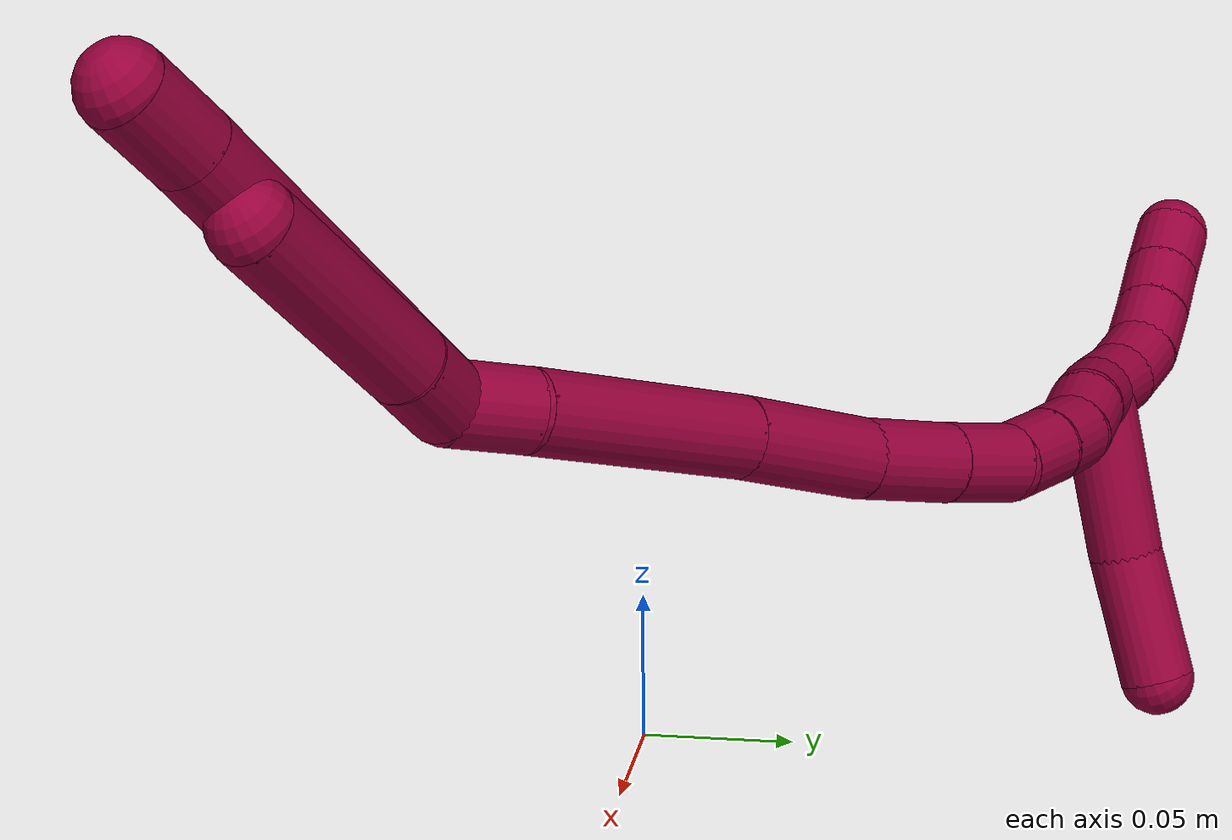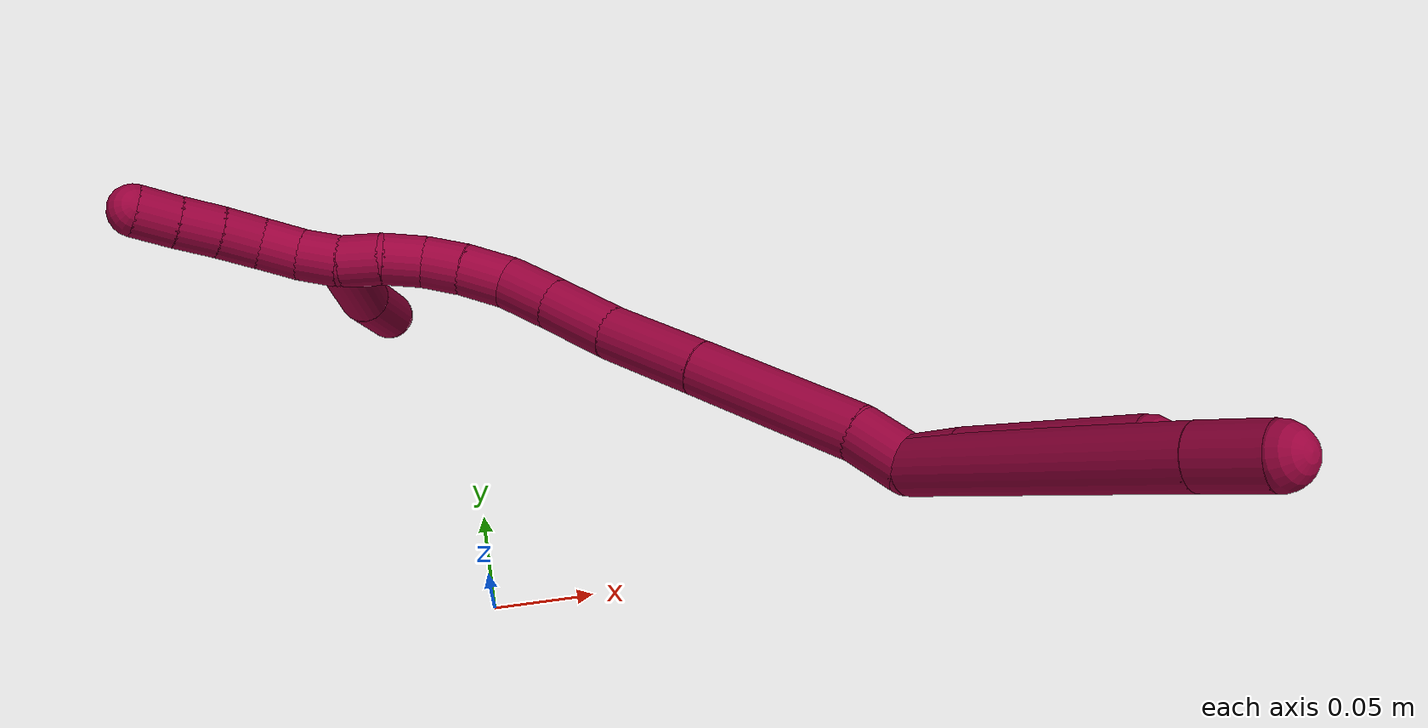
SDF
<sdf version="1.7">
 <world name="default">
  <model name="8">
   <static>0</static>
   <link name="8">
    <collision name="collision-cylinder-e_1_2_8">
     <pose>0.0127 -0.001169 0.05979 0.019546 0.209265 0.002053</pose>
     <geometry><cylinder><radius>0.0125</radius><length>0.12227</length></cylinder></geometry>
     <surface>
      <friction><ode><mu>1.16</mu><mu2>1.16</mu2><slip1>0</slip1><slip2>0</slip2></ode></friction>
      <contact><ode><kp>1e+06</kp><kd>1</kd><max_vel>0</max_vel><min_depth>0.001</min_depth></ode></contact>
     </surface>
    </collision>
    <visual name="visual-cylinder-e_1_2_8">
     <pose>0.0127 -0.001169 0.05979 0.019546 0.209265 0.002053</pose>
     <geometry><cylinder><radius>0.0125</radius><length>0.12227</length></cylinder></geometry>
     <material><ambient>0.584314 0 0.227451 1</ambient></material>
    </visual>
    <collision name="collision-cylinder-e_2_8_6">
     <pose>0.028658 -0.002774 0.13305 0.032357 0.237166 0.003855</pose>
     <geometry><cylinder><radius>0.0125</radius><length>0.02773</length></cylinder></geometry>
     <surface>
      <friction><ode><mu>1.16</mu><mu2>1.16</mu2><slip1>0</slip1><slip2>0</slip2></ode></friction>
      <contact><ode><kp>1e+06</kp><kd>1</kd><max_vel>0</max_vel><min_depth>0.001</min_depth></ode></contact>
     </surface>
    </collision>
    <visual name="visual-cylinder-e_2_8_6">
     <pose>0.028658 -0.002774 0.13305 0.032357 0.237166 0.003855</pose>
     <geometry><cylinder><radius>0.0125</radius><length>0.02773</length></cylinder></geometry>
     <material><ambient>0.584314 0 0.227451 1</ambient></material>
    </visual>
    <collision name="collision-cylinder-e_1_2_9">
     <pose>0.003952 0.001131 0.011675 -0.096568 0.324988 -0.015843</pose>
     <geometry><cylinder><radius>0.0125</radius><length>0.024756</length></cylinder></geometry>
     <surface>
      <friction><ode><mu>1.16</mu><mu2>1.16</mu2><slip1>0</slip1><slip2>0</slip2></ode></friction>
      <contact><ode><kp>1e+06</kp><kd>1</kd><max_vel>0</max_vel><min_depth>0.001</min_depth></ode></contact>
     </surface>
    </collision>
    <visual name="visual-cylinder-e_1_2_9">
     <pose>0.003952 0.001131 0.011675 -0.096568 0.324988 -0.015843</pose>
     <geometry><cylinder><radius>0.0125</radius><length>0.024756</length></cylinder></geometry>
     <material><ambient>0.584314 0 0.227451 1</ambient></material>
    </visual>
    <collision name="collision-cylinder-e_2_9_5">
     <pose>0.018292 0.002854 0.059506 -0.016375 0.279741 -0.002306</pose>
     <geometry><cylinder><radius>0.0125</radius><length>0.075244</length></cylinder></geometry>
     <surface>
      <friction><ode><mu>1.16</mu><mu2>1.16</mu2><slip1>0</slip1><slip2>0</slip2></ode></friction>
      <contact><ode><kp>1e+06</kp><kd>1</kd><max_vel>0</max_vel><min_depth>0.001</min_depth></ode></contact>
     </surface>
    </collision>
    <visual name="visual-cylinder-e_2_9_5">
     <pose>0.018292 0.002854 0.059506 -0.016375 0.279741 -0.002306</pose>
     <geometry><cylinder><radius>0.0125</radius><length>0.075244</length></cylinder></geometry>
     <material><ambient>0.584314 0 0.227451 1</ambient></material>
    </visual>
    <collision name="collision-cylinder-e_1_2_10">
     <pose>-0.00621 0.006342 -0.009309 -2.54354 -0.503858 1.39141</pose>
     <geometry><cylinder><radius>0.0125</radius><length>0.025725</length></cylinder></geometry>
     <surface>
      <friction><ode><mu>1.16</mu><mu2>1.16</mu2><slip1>0</slip1><slip2>0</slip2></ode></friction>
      <contact><ode><kp>1e+06</kp><kd>1</kd><max_vel>0</max_vel><min_depth>0.001</min_depth></ode></contact>
     </surface>
    </collision>
    <visual name="visual-cylinder-e_1_2_10">
     <pose>-0.00621 0.006342 -0.009309 -2.54354 -0.503858 1.39141</pose>
     <geometry><cylinder><radius>0.0125</radius><length>0.025725</length></cylinder></geometry>
     <material><ambient>0.584314 0 0.227451 1</ambient></material>
    </visual>
    <collision name="collision-cylinder-e_2_10_11">
     <pose>-0.033889 0.026132 -0.049289 -2.72837 -0.570062 1.8997</pose>
     <geometry><cylinder><radius>0.0125</radius><length>0.079561</length></cylinder></geometry>
     <surface>
      <friction><ode><mu>1.16</mu><mu2>1.16</mu2><slip1>0</slip1><slip2>0</slip2></ode></friction>
      <contact><ode><kp>1e+06</kp><kd>1</kd><max_vel>0</max_vel><min_depth>0.001</min_depth></ode></contact>
     </surface>
    </collision>
    <visual name="visual-cylinder-e_2_10_11">
     <pose>-0.033889 0.026132 -0.049289 -2.72837 -0.570062 1.8997</pose>
     <geometry><cylinder><radius>0.0125</radius><length>0.079561</length></cylinder></geometry>
     <material><ambient>0.584314 0 0.227451 1</ambient></material>
    </visual>
    <collision name="collision-cylinder-e_3_11_12">
     <pose>-0.067869 0.047899 -0.099554 -2.7401 -0.531351 1.85738</pose>
     <geometry><cylinder><radius>0.0125</radius><length>0.049381</length></cylinder></geometry>
     <surface>
      <friction><ode><mu>1.16</mu><mu2>1.16</mu2><slip1>0</slip1><slip2>0</slip2></ode></friction>
      <contact><ode><kp>1e+06</kp><kd>1</kd><max_vel>0</max_vel><min_depth>0.001</min_depth></ode></contact>
     </surface>
    </collision>
    <visual name="visual-cylinder-e_3_11_12">
     <pose>-0.067869 0.047899 -0.099554 -2.7401 -0.531351 1.85738</pose>
     <geometry><cylinder><radius>0.0125</radius><length>0.049381</length></cylinder></geometry>
     <material><ambient>0.584314 0 0.227451 1</ambient></material>
    </visual>
    <collision name="collision-cylinder-e_4_12_13">
     <pose>-0.09004 0.063041 -0.13178 -2.64638 -0.592305 1.75785</pose>
     <geometry><cylinder><radius>0.0125</radius><length>0.034609</length></cylinder></geometry>
     <surface>
      <friction><ode><mu>1.16</mu><mu2>1.16</mu2><slip1>0</slip1><slip2>0</slip2></ode></friction>
      <contact><ode><kp>1e+06</kp><kd>1</kd><max_vel>0</max_vel><min_depth>0.001</min_depth></ode></contact>
     </surface>
    </collision>
    <visual name="visual-cylinder-e_4_12_13">
     <pose>-0.09004 0.063041 -0.13178 -2.64638 -0.592305 1.75785</pose>
     <geometry><cylinder><radius>0.0125</radius><length>0.034609</length></cylinder></geometry>
     <material><ambient>0.584314 0 0.227451 1</ambient></material>
    </visual>
    <collision name="collision-cylinder-e_5_13_14">
     <pose>-0.107873 0.07503 -0.154216 -2.65655 -0.635397 1.85162</pose>
     <geometry><cylinder><radius>0.0125</radius><length>0.027541</length></cylinder></geometry>
     <surface>
      <friction><ode><mu>1.16</mu><mu2>1.16</mu2><slip1>0</slip1><slip2>0</slip2></ode></friction>
      <contact><ode><kp>1e+06</kp><kd>1</kd><max_vel>0</max_vel><min_depth>0.001</min_depth></ode></contact>
     </surface>
    </collision>
    <visual name="visual-cylinder-e_5_13_14">
     <pose>-0.107873 0.07503 -0.154216 -2.65655 -0.635397 1.85162</pose>
     <geometry><cylinder><radius>0.0125</radius><length>0.027541</length></cylinder></geometry>
     <material><ambient>0.584314 0 0.227451 1</ambient></material>
    </visual>
    <collision name="collision-cylinder-e_6_14_15">
     <pose>-0.125287 0.08245 -0.170469 -2.80562 -0.934276 2.49289</pose>
     <geometry><cylinder><radius>0.0125</radius><length>0.022983</length></cylinder></geometry>
     <surface>
      <friction><ode><mu>1.16</mu><mu2>1.16</mu2><slip1>0</slip1><slip2>0</slip2></ode></friction>
      <contact><ode><kp>1e+06</kp><kd>1</kd><max_vel>0</max_vel><min_depth>0.001</min_depth></ode></contact>
     </surface>
    </collision>
    <visual name="visual-cylinder-e_6_14_15">
     <pose>-0.125287 0.08245 -0.170469 -2.80562 -0.934276 2.49289</pose>
     <geometry><cylinder><radius>0.0125</radius><length>0.022983</length></cylinder></geometry>
     <material><ambient>0.584314 0 0.227451 1</ambient></material>
    </visual>
    <collision name="collision-cylinder-e_7_15_16">
     <pose>-0.142801 0.085657 -0.18255 -2.9735 -0.966441 2.82319</pose>
     <geometry><cylinder><radius>0.0125</radius><length>0.020107</length></cylinder></geometry>
     <surface>
      <friction><ode><mu>1.16</mu><mu2>1.16</mu2><slip1>0</slip1><slip2>0</slip2></ode></friction>
      <contact><ode><kp>1e+06</kp><kd>1</kd><max_vel>0</max_vel><min_depth>0.001</min_depth></ode></contact>
     </surface>
    </collision>
    <visual name="visual-cylinder-e_7_15_16">
     <pose>-0.142801 0.085657 -0.18255 -2.9735 -0.966441 2.82319</pose>
     <geometry><cylinder><radius>0.0125</radius><length>0.020107</length></cylinder></geometry>
     <material><ambient>0.584314 0 0.227451 1</ambient></material>
    </visual>
    <collision name="collision-cylinder-e_8_16_17">
     <pose>-0.160411 0.085717 -0.191727 2.89384 -1.19759 -2.78062</pose>
     <geometry><cylinder><radius>0.0125</radius><length>0.020056</length></cylinder></geometry>
     <surface>
      <friction><ode><mu>1.16</mu><mu2>1.16</mu2><slip1>0</slip1><slip2>0</slip2></ode></friction>
      <contact><ode><kp>1e+06</kp><kd>1</kd><max_vel>0</max_vel><min_depth>0.001</min_depth></ode></contact>
     </surface>
    </collision>
    <visual name="visual-cylinder-e_8_16_17">
     <pose>-0.160411 0.085717 -0.191727 2.89384 -1.19759 -2.78062</pose>
     <geometry><cylinder><radius>0.0125</radius><length>0.020056</length></cylinder></geometry>
     <material><ambient>0.584314 0 0.227451 1</ambient></material>
    </visual>
    <collision name="collision-cylinder-e_9_17_1">
     <pose>-0.17798 0.08312 -0.200725 2.83941 -0.96411 -2.57526</pose>
     <geometry><cylinder><radius>0.0125</radius><length>0.020037</length></cylinder></geometry>
     <surface>
      <friction><ode><mu>1.16</mu><mu2>1.16</mu2><slip1>0</slip1><slip2>0</slip2></ode></friction>
      <contact><ode><kp>1e+06</kp><kd>1</kd><max_vel>0</max_vel><min_depth>0.001</min_depth></ode></contact>
     </surface>
    </collision>
    <visual name="visual-cylinder-e_9_17_1">
     <pose>-0.17798 0.08312 -0.200725 2.83941 -0.96411 -2.57526</pose>
     <geometry><cylinder><radius>0.0125</radius><length>0.020037</length></cylinder></geometry>
     <material><ambient>0.584314 0 0.227451 1</ambient></material>
    </visual>
    <collision name="collision-cylinder-e_1_1_18">
     <pose>-0.194755 0.082035 -0.211336 -3.02292 -1.02455 2.93109</pose>
     <geometry><cylinder><radius>0.0125</radius><length>0.02</length></cylinder></geometry>
     <surface>
      <friction><ode><mu>1.16</mu><mu2>1.16</mu2><slip1>0</slip1><slip2>0</slip2></ode></friction>
      <contact><ode><kp>1e+06</kp><kd>1</kd><max_vel>0</max_vel><min_depth>0.001</min_depth></ode></contact>
     </surface>
    </collision>
    <visual name="visual-cylinder-e_1_1_18">
     <pose>-0.194755 0.082035 -0.211336 -3.02292 -1.02455 2.93109</pose>
     <geometry><cylinder><radius>0.0125</radius><length>0.02</length></cylinder></geometry>
     <material><ambient>0.584314 0 0.227451 1</ambient></material>
    </visual>
    <collision name="collision-cylinder-e_2_18_19">
     <pose>-0.212675 0.083749 -0.219796 -2.82043 -1.21548 2.68401</pose>
     <geometry><cylinder><radius>0.0125</radius><length>0.02</length></cylinder></geometry>
     <surface>
      <friction><ode><mu>1.16</mu><mu2>1.16</mu2><slip1>0</slip1><slip2>0</slip2></ode></friction>
      <contact><ode><kp>1e+06</kp><kd>1</kd><max_vel>0</max_vel><min_depth>0.001</min_depth></ode></contact>
     </surface>
    </collision>
    <visual name="visual-cylinder-e_2_18_19">
     <pose>-0.212675 0.083749 -0.219796 -2.82043 -1.21548 2.68401</pose>
     <geometry><cylinder><radius>0.0125</radius><length>0.02</length></cylinder></geometry>
     <material><ambient>0.584314 0 0.227451 1</ambient></material>
    </visual>
    <collision name="collision-cylinder-e_3_19_20">
     <pose>-0.232039 0.085073 -0.223536 -2.66625 -1.52131 2.64309</pose>
     <geometry><cylinder><radius>0.0125</radius><length>0.02</length></cylinder></geometry>
     <surface>
      <friction><ode><mu>1.16</mu><mu2>1.16</mu2><slip1>0</slip1><slip2>0</slip2></ode></friction>
      <contact><ode><kp>1e+06</kp><kd>1</kd><max_vel>0</max_vel><min_depth>0.001</min_depth></ode></contact>
     </surface>
    </collision>
    <visual name="visual-cylinder-e_3_19_20">
     <pose>-0.232039 0.085073 -0.223536 -2.66625 -1.52131 2.64309</pose>
     <geometry><cylinder><radius>0.0125</radius><length>0.02</length></cylinder></geometry>
     <material><ambient>0.584314 0 0.227451 1</ambient></material>
    </visual>
    <collision name="collision-cylinder-e_4_20_21">
     <pose>-0.252018 0.085127 -0.224349 2.70706 -1.52971 -2.68943</pose>
     <geometry><cylinder><radius>0.0125</radius><length>0.02</length></cylinder></geometry>
     <surface>
      <friction><ode><mu>1.16</mu><mu2>1.16</mu2><slip1>0</slip1><slip2>0</slip2></ode></friction>
      <contact><ode><kp>1e+06</kp><kd>1</kd><max_vel>0</max_vel><min_depth>0.001</min_depth></ode></contact>
     </surface>
    </collision>
    <visual name="visual-cylinder-e_4_20_21">
     <pose>-0.252018 0.085127 -0.224349 2.70706 -1.52971 -2.68943</pose>
     <geometry><cylinder><radius>0.0125</radius><length>0.02</length></cylinder></geometry>
     <material><ambient>0.584314 0 0.227451 1</ambient></material>
    </visual>
    <collision name="collision-cylinder-e_5_21_4">
     <pose>-0.272004 0.085108 -0.225022 -2.66774 -1.53705 2.65211</pose>
     <geometry><cylinder><radius>0.0125</radius><length>0.02</length></cylinder></geometry>
     <surface>
      <friction><ode><mu>1.16</mu><mu2>1.16</mu2><slip1>0</slip1><slip2>0</slip2></ode></friction>
      <contact><ode><kp>1e+06</kp><kd>1</kd><max_vel>0</max_vel><min_depth>0.001</min_depth></ode></contact>
     </surface>
    </collision>
    <visual name="visual-cylinder-e_5_21_4">
     <pose>-0.272004 0.085108 -0.225022 -2.66774 -1.53705 2.65211</pose>
     <geometry><cylinder><radius>0.0125</radius><length>0.02</length></cylinder></geometry>
     <material><ambient>0.584314 0 0.227451 1</ambient></material>
    </visual>
    <collision name="collision-cylinder-e_1_1_22">
     <pose>-0.172113 0.080477 -0.230349 3.10257 0.527687 2.99738</pose>
     <geometry><cylinder><radius>0.0125</radius><length>0.055995</length></cylinder></geometry>
     <surface>
      <friction><ode><mu>1.16</mu><mu2>1.16</mu2><slip1>0</slip1><slip2>0</slip2></ode></friction>
      <contact><ode><kp>1e+06</kp><kd>1</kd><max_vel>0</max_vel><min_depth>0.001</min_depth></ode></contact>
     </surface>
    </collision>
    <visual name="visual-cylinder-e_1_1_22">
     <pose>-0.172113 0.080477 -0.230349 3.10257 0.527687 2.99738</pose>
     <geometry><cylinder><radius>0.0125</radius><length>0.055995</length></cylinder></geometry>
     <material><ambient>0.584314 0 0.227451 1</ambient></material>
    </visual>
    <collision name="collision-cylinder-e_2_22_3">
     <pose>-0.144996 0.081258 -0.272173 -3.04417 0.633149 -2.84613</pose>
     <geometry><cylinder><radius>0.0125</radius><length>0.044005</length></cylinder></geometry>
     <surface>
      <friction><ode><mu>1.16</mu><mu2>1.16</mu2><slip1>0</slip1><slip2>0</slip2></ode></friction>
      <contact><ode><kp>1e+06</kp><kd>1</kd><max_vel>0</max_vel><min_depth>0.001</min_depth></ode></contact>
     </surface>
    </collision>
    <visual name="visual-cylinder-e_2_22_3">
     <pose>-0.144996 0.081258 -0.272173 -3.04417 0.633149 -2.84613</pose>
     <geometry><cylinder><radius>0.0125</radius><length>0.044005</length></cylinder></geometry>
     <material><ambient>0.584314 0 0.227451 1</ambient></material>
    </visual>
    <collision name="collision-sphere-3">
     <pose>-0.131978 0.082984 -0.289827 0 -0 0</pose>
     <geometry><sphere><radius>0.0125</radius></sphere></geometry>
     <surface>
      <friction><ode><mu>1.16</mu><mu2>1.16</mu2><slip1>0</slip1><slip2>0</slip2></ode></friction>
      <contact><ode><kp>1e+06</kp><kd>1</kd><max_vel>0</max_vel><min_depth>0.001</min_depth></ode></contact>
     </surface>
    </collision>
    <visual name="visual-sphere-3">
     <pose>-0.131978 0.082984 -0.289827 0 -0 0</pose>
     <geometry><sphere><radius>0.0125</radius></sphere></geometry>
     <material><ambient>0.584314 0 0.227451 1</ambient></material>
    </visual>
    <collision name="collision-sphere-22">
     <pose>-0.158015 0.079533 -0.254519 0 -0 0</pose>
     <geometry><sphere><radius>0.0125</radius></sphere></geometry>
     <surface>
      <friction><ode><mu>1.16</mu><mu2>1.16</mu2><slip1>0</slip1><slip2>0</slip2></ode></friction>
      <contact><ode><kp>1e+06</kp><kd>1</kd><max_vel>0</max_vel><min_depth>0.001</min_depth></ode></contact>
     </surface>
    </collision>
    <visual name="visual-sphere-22">
     <pose>-0.158015 0.079533 -0.254519 0 -0 0</pose>
     <geometry><sphere><radius>0.0125</radius></sphere></geometry>
     <material><ambient>0.584314 0 0.227451 1</ambient></material>
    </visual>
    <collision name="collision-sphere-4">
     <pose>-0.281998 0.085261 -0.225322 0 -0 0</pose>
     <geometry><sphere><radius>0.0125</radius></sphere></geometry>
     <surface>
      <friction><ode><mu>1.16</mu><mu2>1.16</mu2><slip1>0</slip1><slip2>0</slip2></ode></friction>
      <contact><ode><kp>1e+06</kp><kd>1</kd><max_vel>0</max_vel><min_depth>0.001</min_depth></ode></contact>
     </surface>
    </collision>
    <visual name="visual-sphere-4">
     <pose>-0.281998 0.085261 -0.225322 0 -0 0</pose>
     <geometry><sphere><radius>0.0125</radius></sphere></geometry>
     <material><ambient>0.584314 0 0.227451 1</ambient></material>
    </visual>
    <collision name="collision-sphere-21">
     <pose>-0.262009 0.084954 -0.224721 0 -0 0</pose>
     <geometry><sphere><radius>0.0125</radius></sphere></geometry>
     <surface>
      <friction><ode><mu>1.16</mu><mu2>1.16</mu2><slip1>0</slip1><slip2>0</slip2></ode></friction>
      <contact><ode><kp>1e+06</kp><kd>1</kd><max_vel>0</max_vel><min_depth>0.001</min_depth></ode></contact>
     </surface>
    </collision>
    <visual name="visual-sphere-21">
     <pose>-0.262009 0.084954 -0.224721 0 -0 0</pose>
     <geometry><sphere><radius>0.0125</radius></sphere></geometry>
     <material><ambient>0.584314 0 0.227451 1</ambient></material>
    </visual>
    <collision name="collision-sphere-20">
     <pose>-0.242026 0.085299 -0.223976 0 -0 0</pose>
     <geometry><sphere><radius>0.0125</radius></sphere></geometry>
     <surface>
      <friction><ode><mu>1.16</mu><mu2>1.16</mu2><slip1>0</slip1><slip2>0</slip2></ode></friction>
      <contact><ode><kp>1e+06</kp><kd>1</kd><max_vel>0</max_vel><min_depth>0.001</min_depth></ode></contact>
     </surface>
    </collision>
    <visual name="visual-sphere-20">
     <pose>-0.242026 0.085299 -0.223976 0 -0 0</pose>
     <geometry><sphere><radius>0.0125</radius></sphere></geometry>
     <material><ambient>0.584314 0 0.227451 1</ambient></material>
    </visual>
    <collision name="collision-sphere-10">
     <pose>-0.01242 0.012684 -0.018618 0 -0 0</pose>
     <geometry><sphere><radius>0.0125</radius></sphere></geometry>
     <surface>
      <friction><ode><mu>1.16</mu><mu2>1.16</mu2><slip1>0</slip1><slip2>0</slip2></ode></friction>
      <contact><ode><kp>1e+06</kp><kd>1</kd><max_vel>0</max_vel><min_depth>0.001</min_depth></ode></contact>
     </surface>
    </collision>
    <visual name="visual-sphere-10">
     <pose>-0.01242 0.012684 -0.018618 0 -0 0</pose>
     <geometry><sphere><radius>0.0125</radius></sphere></geometry>
     <material><ambient>0.584314 0 0.227451 1</ambient></material>
    </visual>
    <collision name="collision-sphere-5">
     <pose>0.02868 0.003446 0.09566 0 -0 0</pose>
     <geometry><sphere><radius>0.0125</radius></sphere></geometry>
     <surface>
      <friction><ode><mu>1.16</mu><mu2>1.16</mu2><slip1>0</slip1><slip2>0</slip2></ode></friction>
      <contact><ode><kp>1e+06</kp><kd>1</kd><max_vel>0</max_vel><min_depth>0.001</min_depth></ode></contact>
     </surface>
    </collision>
    <visual name="visual-sphere-5">
     <pose>0.02868 0.003446 0.09566 0 -0 0</pose>
     <geometry><sphere><radius>0.0125</radius></sphere></geometry>
     <material><ambient>0.584314 0 0.227451 1</ambient></material>
    </visual>
    <collision name="collision-sphere-6">
     <pose>0.031916 -0.00321 0.146519 0 -0 0</pose>
     <geometry><sphere><radius>0.0125</radius></sphere></geometry>
     <surface>
      <friction><ode><mu>1.16</mu><mu2>1.16</mu2><slip1>0</slip1><slip2>0</slip2></ode></friction>
      <contact><ode><kp>1e+06</kp><kd>1</kd><max_vel>0</max_vel><min_depth>0.001</min_depth></ode></contact>
     </surface>
    </collision>
    <visual name="visual-sphere-6">
     <pose>0.031916 -0.00321 0.146519 0 -0 0</pose>
     <geometry><sphere><radius>0.0125</radius></sphere></geometry>
     <material><ambient>0.584314 0 0.227451 1</ambient></material>
    </visual>
    <collision name="collision-sphere-9">
     <pose>0.007905 0.002262 0.023351 0 -0 0</pose>
     <geometry><sphere><radius>0.0125</radius></sphere></geometry>
     <surface>
      <friction><ode><mu>1.16</mu><mu2>1.16</mu2><slip1>0</slip1><slip2>0</slip2></ode></friction>
      <contact><ode><kp>1e+06</kp><kd>1</kd><max_vel>0</max_vel><min_depth>0.001</min_depth></ode></contact>
     </surface>
    </collision>
    <visual name="visual-sphere-9">
     <pose>0.007905 0.002262 0.023351 0 -0 0</pose>
     <geometry><sphere><radius>0.0125</radius></sphere></geometry>
     <material><ambient>0.584314 0 0.227451 1</ambient></material>
    </visual>
    <collision name="collision-sphere-2">
     <geometry><sphere><radius>0.0125</radius></sphere></geometry>
     <surface>
      <friction><ode><mu>1.16</mu><mu2>1.16</mu2><slip1>0</slip1><slip2>0</slip2></ode></friction>
      <contact><ode><kp>1e+06</kp><kd>1</kd><max_vel>0</max_vel><min_depth>0.001</min_depth></ode></contact>
     </surface>
    </collision>
    <visual name="visual-sphere-2">
     <geometry><sphere><radius>0.0125</radius></sphere></geometry>
     <material><ambient>0.584314 0 0.227451 1</ambient></material>
    </visual>
    <collision name="collision-sphere-19">
     <pose>-0.222051 0.084847 -0.223097 0 -0 0</pose>
     <geometry><sphere><radius>0.0125</radius></sphere></geometry>
     <surface>
      <friction><ode><mu>1.16</mu><mu2>1.16</mu2><slip1>0</slip1><slip2>0</slip2></ode></friction>
      <contact><ode><kp>1e+06</kp><kd>1</kd><max_vel>0</max_vel><min_depth>0.001</min_depth></ode></contact>
     </surface>
    </collision>
    <visual name="visual-sphere-19">
     <pose>-0.222051 0.084847 -0.223097 0 -0 0</pose>
     <geometry><sphere><radius>0.0125</radius></sphere></geometry>
     <material><ambient>0.584314 0 0.227451 1</ambient></material>
    </visual>
    <collision name="collision-sphere-8">
     <pose>0.025401 -0.002338 0.11958 0 -0 0</pose>
     <geometry><sphere><radius>0.0125</radius></sphere></geometry>
     <surface>
      <friction><ode><mu>1.16</mu><mu2>1.16</mu2><slip1>0</slip1><slip2>0</slip2></ode></friction>
      <contact><ode><kp>1e+06</kp><kd>1</kd><max_vel>0</max_vel><min_depth>0.001</min_depth></ode></contact>
     </surface>
    </collision>
    <visual name="visual-sphere-8">
     <pose>0.025401 -0.002338 0.11958 0 -0 0</pose>
     <geometry><sphere><radius>0.0125</radius></sphere></geometry>
     <material><ambient>0.584314 0 0.227451 1</ambient></material>
    </visual>
    <collision name="collision-sphere-11">
     <pose>-0.055358 0.039581 -0.07996 0 -0 0</pose>
     <geometry><sphere><radius>0.0125</radius></sphere></geometry>
     <surface>
      <friction><ode><mu>1.16</mu><mu2>1.16</mu2><slip1>0</slip1><slip2>0</slip2></ode></friction>
      <contact><ode><kp>1e+06</kp><kd>1</kd><max_vel>0</max_vel><min_depth>0.001</min_depth></ode></contact>
     </surface>
    </collision>
    <visual name="visual-sphere-11">
     <pose>-0.055358 0.039581 -0.07996 0 -0 0</pose>
     <geometry><sphere><radius>0.0125</radius></sphere></geometry>
     <material><ambient>0.584314 0 0.227451 1</ambient></material>
    </visual>
    <collision name="collision-sphere-12">
     <pose>-0.08038 0.056218 -0.119148 0 -0 0</pose>
     <geometry><sphere><radius>0.0125</radius></sphere></geometry>
     <surface>
      <friction><ode><mu>1.16</mu><mu2>1.16</mu2><slip1>0</slip1><slip2>0</slip2></ode></friction>
      <contact><ode><kp>1e+06</kp><kd>1</kd><max_vel>0</max_vel><min_depth>0.001</min_depth></ode></contact>
     </surface>
    </collision>
    <visual name="visual-sphere-12">
     <pose>-0.08038 0.056218 -0.119148 0 -0 0</pose>
     <geometry><sphere><radius>0.0125</radius></sphere></geometry>
     <material><ambient>0.584314 0 0.227451 1</ambient></material>
    </visual>
    <collision name="collision-sphere-13">
     <pose>-0.099701 0.069863 -0.144412 0 -0 0</pose>
     <geometry><sphere><radius>0.0125</radius></sphere></geometry>
     <surface>
      <friction><ode><mu>1.16</mu><mu2>1.16</mu2><slip1>0</slip1><slip2>0</slip2></ode></friction>
      <contact><ode><kp>1e+06</kp><kd>1</kd><max_vel>0</max_vel><min_depth>0.001</min_depth></ode></contact>
     </surface>
    </collision>
    <visual name="visual-sphere-13">
     <pose>-0.099701 0.069863 -0.144412 0 -0 0</pose>
     <geometry><sphere><radius>0.0125</radius></sphere></geometry>
     <material><ambient>0.584314 0 0.227451 1</ambient></material>
    </visual>
    <collision name="collision-sphere-14">
     <pose>-0.116046 0.080198 -0.164021 0 -0 0</pose>
     <geometry><sphere><radius>0.0125</radius></sphere></geometry>
     <surface>
      <friction><ode><mu>1.16</mu><mu2>1.16</mu2><slip1>0</slip1><slip2>0</slip2></ode></friction>
      <contact><ode><kp>1e+06</kp><kd>1</kd><max_vel>0</max_vel><min_depth>0.001</min_depth></ode></contact>
     </surface>
    </collision>
    <visual name="visual-sphere-14">
     <pose>-0.116046 0.080198 -0.164021 0 -0 0</pose>
     <geometry><sphere><radius>0.0125</radius></sphere></geometry>
     <material><ambient>0.584314 0 0.227451 1</ambient></material>
    </visual>
    <collision name="collision-sphere-15">
     <pose>-0.134528 0.084702 -0.176918 0 -0 0</pose>
     <geometry><sphere><radius>0.0125</radius></sphere></geometry>
     <surface>
      <friction><ode><mu>1.16</mu><mu2>1.16</mu2><slip1>0</slip1><slip2>0</slip2></ode></friction>
      <contact><ode><kp>1e+06</kp><kd>1</kd><max_vel>0</max_vel><min_depth>0.001</min_depth></ode></contact>
     </surface>
    </collision>
    <visual name="visual-sphere-15">
     <pose>-0.134528 0.084702 -0.176918 0 -0 0</pose>
     <geometry><sphere><radius>0.0125</radius></sphere></geometry>
     <material><ambient>0.584314 0 0.227451 1</ambient></material>
    </visual>
    <collision name="collision-sphere-16">
     <pose>-0.151074 0.086613 -0.188182 0 -0 0</pose>
     <geometry><sphere><radius>0.0125</radius></sphere></geometry>
     <surface>
      <friction><ode><mu>1.16</mu><mu2>1.16</mu2><slip1>0</slip1><slip2>0</slip2></ode></friction>
      <contact><ode><kp>1e+06</kp><kd>1</kd><max_vel>0</max_vel><min_depth>0.001</min_depth></ode></contact>
     </surface>
    </collision>
    <visual name="visual-sphere-16">
     <pose>-0.151074 0.086613 -0.188182 0 -0 0</pose>
     <geometry><sphere><radius>0.0125</radius></sphere></geometry>
     <material><ambient>0.584314 0 0.227451 1</ambient></material>
    </visual>
    <collision name="collision-sphere-17">
     <pose>-0.169749 0.08482 -0.195272 0 -0 0</pose>
     <geometry><sphere><radius>0.0125</radius></sphere></geometry>
     <surface>
      <friction><ode><mu>1.16</mu><mu2>1.16</mu2><slip1>0</slip1><slip2>0</slip2></ode></friction>
      <contact><ode><kp>1e+06</kp><kd>1</kd><max_vel>0</max_vel><min_depth>0.001</min_depth></ode></contact>
     </surface>
    </collision>
    <visual name="visual-sphere-17">
     <pose>-0.169749 0.08482 -0.195272 0 -0 0</pose>
     <geometry><sphere><radius>0.0125</radius></sphere></geometry>
     <material><ambient>0.584314 0 0.227451 1</ambient></material>
    </visual>
    <collision name="collision-sphere-1">
     <pose>-0.18621 0.08142 -0.206178 0 -0 0</pose>
     <geometry><sphere><radius>0.0125</radius></sphere></geometry>
     <surface>
      <friction><ode><mu>1.16</mu><mu2>1.16</mu2><slip1>0</slip1><slip2>0</slip2></ode></friction>
      <contact><ode><kp>1e+06</kp><kd>1</kd><max_vel>0</max_vel><min_depth>0.001</min_depth></ode></contact>
     </surface>
    </collision>
    <visual name="visual-sphere-1">
     <pose>-0.18621 0.08142 -0.206178 0 -0 0</pose>
     <geometry><sphere><radius>0.0125</radius></sphere></geometry>
     <material><ambient>0.584314 0 0.227451 1</ambient></material>
    </visual>
    <collision name="collision-sphere-18">
     <pose>-0.2033 0.08265 -0.216495 0 -0 0</pose>
     <geometry><sphere><radius>0.0125</radius></sphere></geometry>
     <surface>
      <friction><ode><mu>1.16</mu><mu2>1.16</mu2><slip1>0</slip1><slip2>0</slip2></ode></friction>
      <contact><ode><kp>1e+06</kp><kd>1</kd><max_vel>0</max_vel><min_depth>0.001</min_depth></ode></contact>
     </surface>
    </collision>
    <visual name="visual-sphere-18">
     <pose>-0.2033 0.08265 -0.216495 0 -0 0</pose>
     <geometry><sphere><radius>0.0125</radius></sphere></geometry>
     <material><ambient>0.584314 0 0.227451 1</ambient></material>
    </visual>
    <inertial>
     <pose>-0.080393 0.043179 -0.08604 0 -0 0</pose>
     <mass>0.75</mass>
     <inertia>
      <ixx>0.000196</ixx>
      <ixy>0</ixy>
      <ixz>0</ixz>
      <iyy>0.000332</iyy>
      <iyz>0</iyz>
      <izz>-3.7e-05</izz>
     </inertia>
    </inertial>
   </link>
   <pose>0.175544 -0.024936 0.172887 0.29296 0.503736 -0.139631</pose>
  </model>
 </world>
</sdf>
